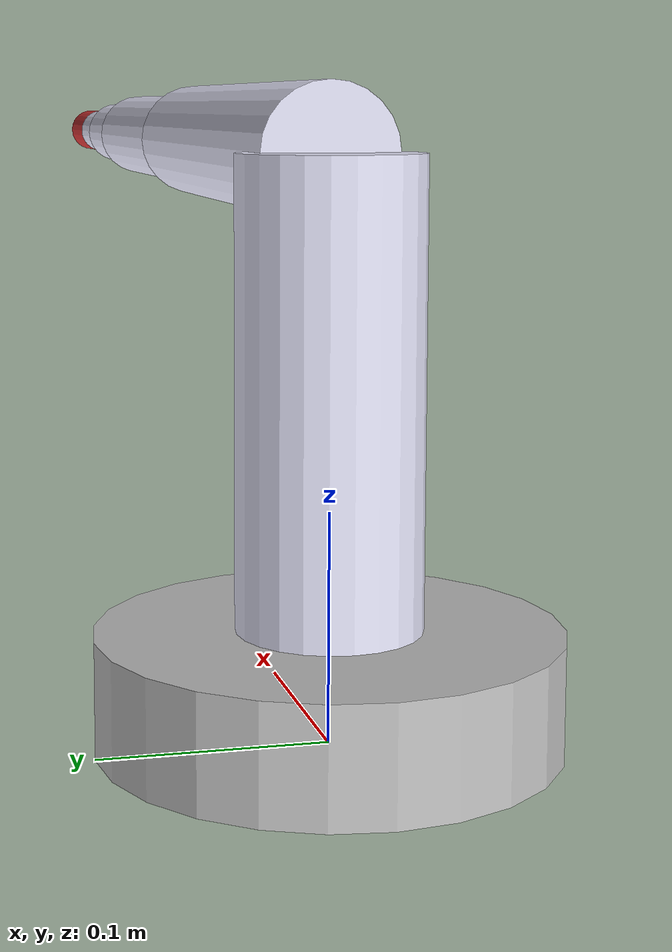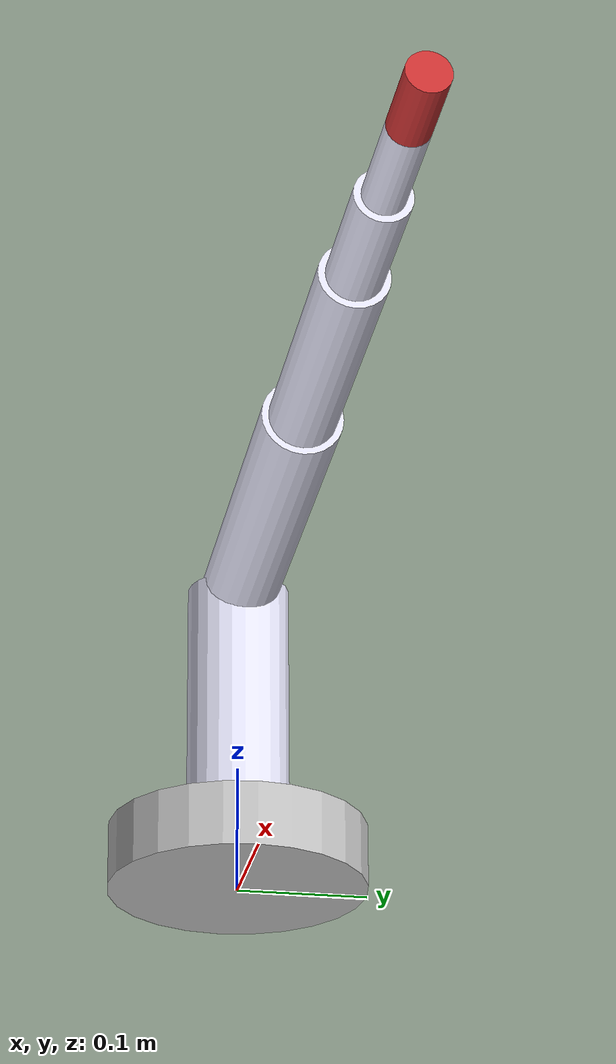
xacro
<?xml version="1.0"?>
<robot name="simple_arm" xmlns:xacro="http://www.ros.org/wiki/xacro">

<!-- Define colors -->
<material name="silver">
    <color rgba="0.9 0.9 0.98 1.0"/>
</material>

<material name="gray">
    <color rgba="0.75 0.75 0.75 1.0"/>
</material>

<material name="red">
    <color rgba="0.8 0.2 0.2 1.0"/>
</material>

<!-- Base Link -->
<link name="base_link">
    <inertial>
        <origin xyz="0 0 0.025" rpy="0 0 0"/>
        <mass value="2.0"/>
        <inertia ixx="0.01" ixy="0.0" ixz="0.0"
                 iyy="0.01" iyz="0.0" izz="0.02"/>
    </inertial>
    <visual>
        <geometry>
            <cylinder radius="0.1" length="0.05"/>
        </geometry>
        <origin xyz="0 0 0.025" rpy="0 0 0"/>
        <material name="gray"/>
    </visual>
    <collision>
        <geometry>
            <cylinder radius="0.1" length="0.05"/>
        </geometry>
        <origin xyz="0 0 0.025" rpy="0 0 0"/>
    </collision>
</link>

<!-- Joint 1: Base rotation -->
<joint name="joint_1" type="revolute">
    <parent link="base_link"/>
    <child link="link_1"/>
    <origin xyz="0 0 0.05" rpy="0 0 0"/>
    <axis xyz="0 0 1"/>
    <limit lower="-3.14159" upper="3.14159" effort="150.0" velocity="2.0"/>
</joint>

<link name="link_1">
    <inertial>
        <origin xyz="0 0 0.1" rpy="0 0 0"/>
        <mass value="1.0"/>
        <inertia ixx="0.02" ixy="0.0" ixz="0.0"
                 iyy="0.02" iyz="0.0" izz="0.005"/>
    </inertial>
    <visual>
        <geometry>
            <cylinder radius="0.04" length="0.2"/>
        </geometry>
        <origin xyz="0 0 0.1" rpy="0 0 0"/>
        <material name="silver"/>
    </visual>
    <collision>
        <geometry>
            <cylinder radius="0.04" length="0.2"/>
        </geometry>
        <origin xyz="0 0 0.1" rpy="0 0 0"/>
    </collision>
</link>

<!-- Joint 2: Shoulder -->
<joint name="joint_2" type="revolute">
    <parent link="link_1"/>
    <child link="link_2"/>
    <origin xyz="0 0 0.2" rpy="0 0 0"/>
    <axis xyz="0 1 0"/>
    <limit lower="-1.57079" upper="1.57079" effort="150.0" velocity="2.0"/>
</joint>

<link name="link_2">
    <inertial>
        <origin xyz="0.15 0 0" rpy="0 0 0"/>
        <mass value="1.5"/>
        <inertia ixx="0.02" ixy="0.0" ixz="0.0"
                 iyy="0.1" iyz="0.0" izz="0.1"/>
    </inertial>
    <visual>
        <geometry>
            <cylinder radius="0.03" length="0.3"/>
        </geometry>
        <origin xyz="0.15 0 0" rpy="0 1.5708 0"/>
        <material name="silver"/>
    </visual>
    <collision>
        <geometry>
            <cylinder radius="0.04" length="0.3"/>
        </geometry>
        <origin xyz="0.15 0 0" rpy="0 1.5708 0"/>
    </collision>
</link>

<!-- Joint 3: Elbow -->
<joint name="joint_3" type="revolute">
    <parent link="link_2"/>
    <child link="link_3"/>
    <origin xyz="0.3 0 0" rpy="0 0 0"/>
    <axis xyz="0 1 0"/>
    <limit lower="-1.57079" upper="1.57079" effort="100.0" velocity="2.0"/>
</joint>

<link name="link_3">
    <inertial>
        <origin xyz="0.1 0 0" rpy="0 0 0"/>
        <mass value="1.0"/>
        <inertia ixx="0.015" ixy="0.0" ixz="0.0"
                 iyy="0.05" iyz="0.0" izz="0.05"/>
    </inertial>
    <visual>
        <geometry>
            <cylinder radius="0.025" length="0.2"/>
        </geometry>
        <origin xyz="0.1 0 0" rpy="0 1.5708 0"/>
        <material name="silver"/>
    </visual>
    <collision>
        <geometry>
            <cylinder radius="0.03" length="0.2"/>
        </geometry>
        <origin xyz="0.1 0 0" rpy="0 1.5708 0"/>
    </collision>
</link>

<!-- Joint 4: Wrist roll -->
<joint name="joint_4" type="revolute">
    <parent link="link_3"/>
    <child link="link_4"/>
    <origin xyz="0.2 0 0" rpy="0 0 0"/>
    <axis xyz="1 0 0"/>
    <limit lower="-3.14159" upper="3.14159" effort="50.0" velocity="3.0"/>
</joint>

<link name="link_4">
    <inertial>
        <origin xyz="0.05 0 0" rpy="0 0 0"/>
        <mass value="0.5"/>
        <inertia ixx="0.01" ixy="0.0" ixz="0.0"
                 iyy="0.01" iyz="0.0" izz="0.01"/>
    </inertial>
    <visual>
        <geometry>
            <cylinder radius="0.02" length="0.1"/>
        </geometry>
        <origin xyz="0.05 0 0" rpy="0 1.5708 0"/>
        <material name="silver"/>
    </visual>
    <collision>
        <geometry>
            <cylinder radius="0.025" length="0.1"/>
        </geometry>
        <origin xyz="0.05 0 0" rpy="0 1.5708 0"/>
    </collision>
</link>

<!-- Joint 5: Wrist pitch -->
<joint name="joint_5" type="revolute">
    <parent link="link_4"/>
    <child link="link_5"/>
    <origin xyz="0.1 0 0" rpy="0 0 0"/>
    <axis xyz="0 1 0"/>
    <limit lower="-1.57079" upper="1.57079" effort="50.0" velocity="3.0"/>
</joint>

<link name="link_5">
    <inertial>
        <origin xyz="0.04 0 0" rpy="0 0 0"/>
        <mass value="0.3"/>
        <inertia ixx="0.005" ixy="0.0" ixz="0.0"
                 iyy="0.005" iyz="0.0" izz="0.005"/>
    </inertial>
    <visual>
        <geometry>
            <cylinder radius="0.015" length="0.08"/>
        </geometry>
        <origin xyz="0.04 0 0" rpy="0 1.5708 0"/>
        <material name="silver"/>
    </visual>
    <collision>
        <geometry>
            <cylinder radius="0.02" length="0.08"/>
        </geometry>
        <origin xyz="0.04 0 0" rpy="0 1.5708 0"/>
    </collision>
</link>

<!-- Joint 6: Wrist yaw -->
<joint name="joint_6" type="revolute">
    <parent link="link_5"/>
    <child link="end_effector"/>
    <origin xyz="0.08 0 0" rpy="0 0 0"/>
    <axis xyz="1 0 0"/>
    <limit lower="-3.14159" upper="3.14159" effort="25.0" velocity="4.0"/>
</joint>

<link name="end_effector">
    <inertial>
        <origin xyz="0.03 0 0" rpy="0 0 0"/>
        <mass value="0.2"/>
        <inertia ixx="0.001" ixy="0.0" ixz="0.0"
                 iyy="0.001" iyz="0.0" izz="0.001"/>
    </inertial>
    <visual>
        <geometry>
            <cylinder radius="0.015" length="0.06"/>
        </geometry>
        <origin xyz="0.03 0 0" rpy="0 1.5708 0"/>
        <material name="red"/>
    </visual>
    <collision>
        <geometry>
            <cylinder radius="0.02" length="0.06"/>
        </geometry>
        <origin xyz="0.03 0 0" rpy="0 1.5708 0"/>
    </collision>
</link>

</robot>
